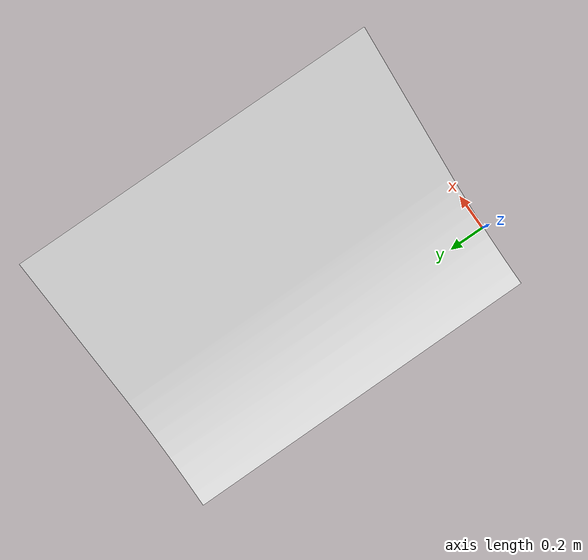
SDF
<?xml version="1.0"?>
<sdf version="1.5">
  <model name="jump22deg">
    <static>true</static>
    <link name="link">
      <collision name="collision">
        <geometry>
          <mesh>
            <uri>model://urdf/jump22deg.dae</uri>
            <scale>1 1 1</scale>
          </mesh>
        </geometry>
        <surface>
          <friction>
            <ode>
              <mu>100</mu>
              <mu2>50</mu2>
            </ode>
          </friction>
        </surface>
      </collision>
      <visual name="visual">
        <cast_shadows>false</cast_shadows>
        <geometry>
          <mesh>
            <uri>model://urdf/cad/jump22deg.dae</uri>
            <scale>1 1 1</scale>
          </mesh>
        </geometry>
        <material>
          <script>
            <uri>model://urdf/cad/gazebo.material</uri>
            <name>Gazebo/White</name>
          </script>
        </material>
      </visual>
    </link>
  </model>
</sdf>
